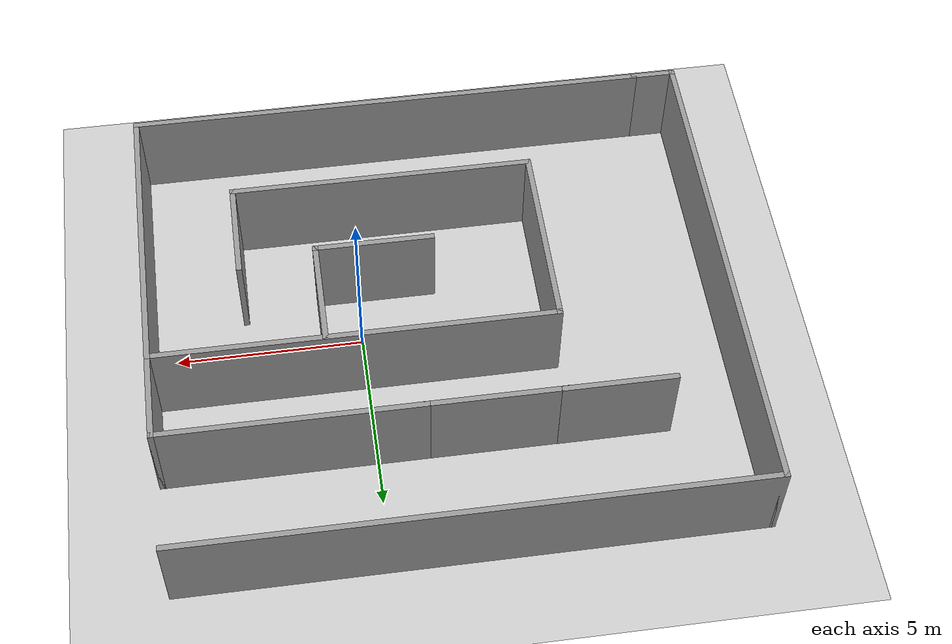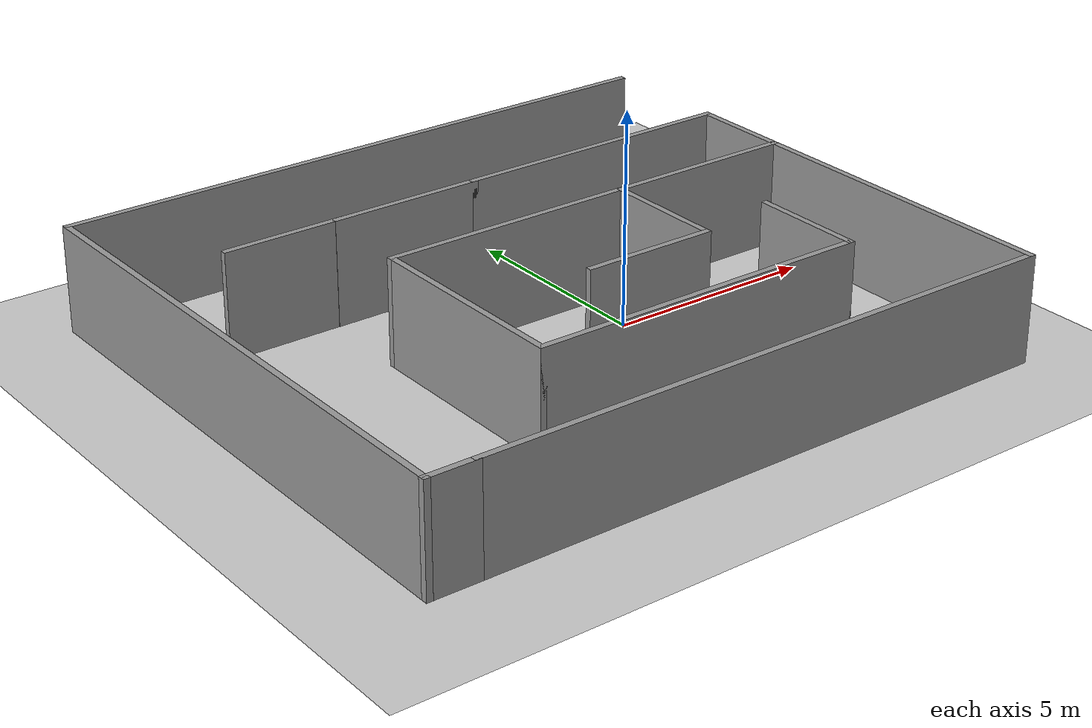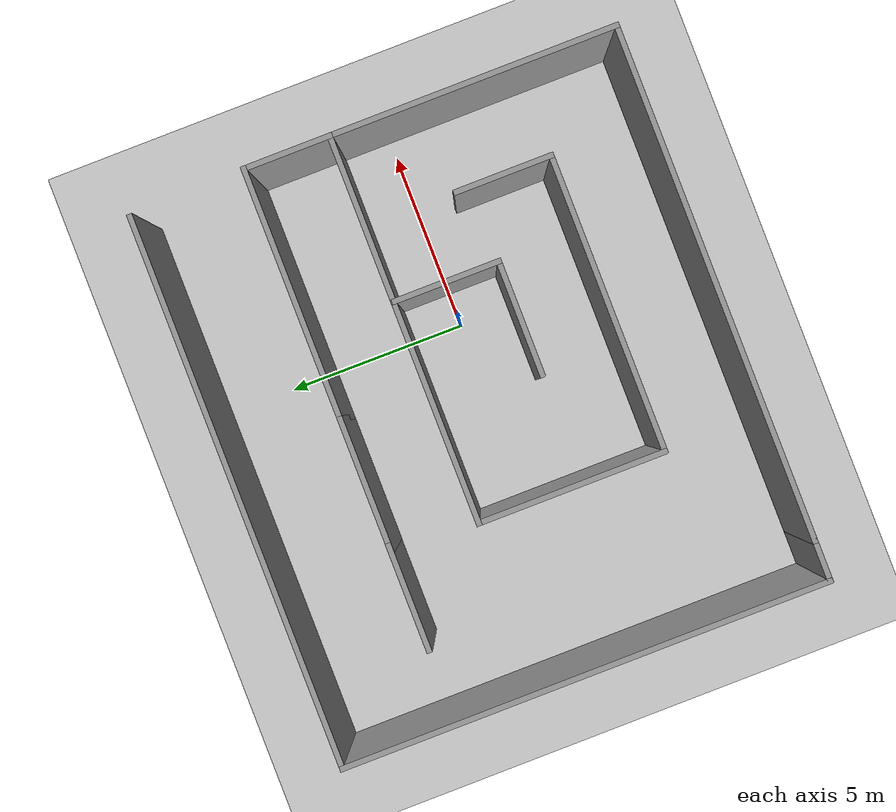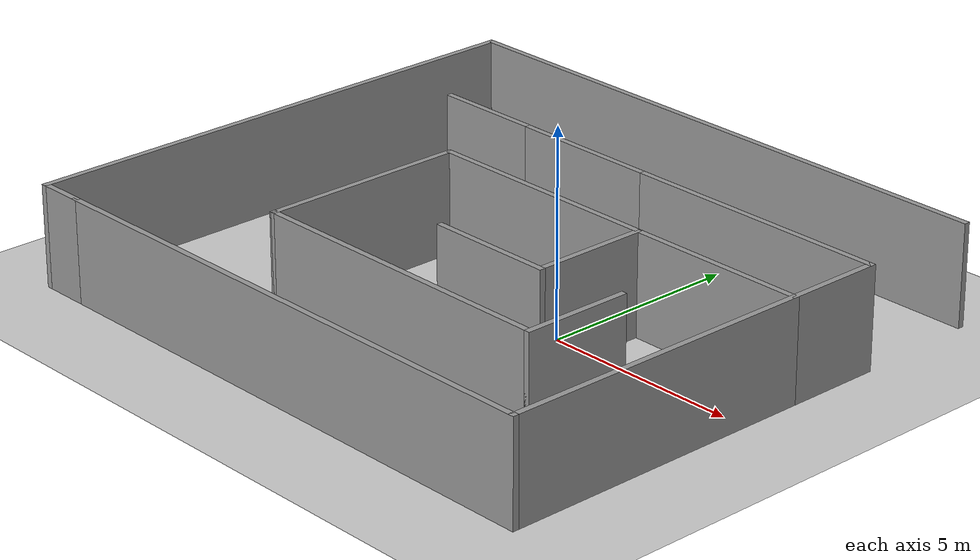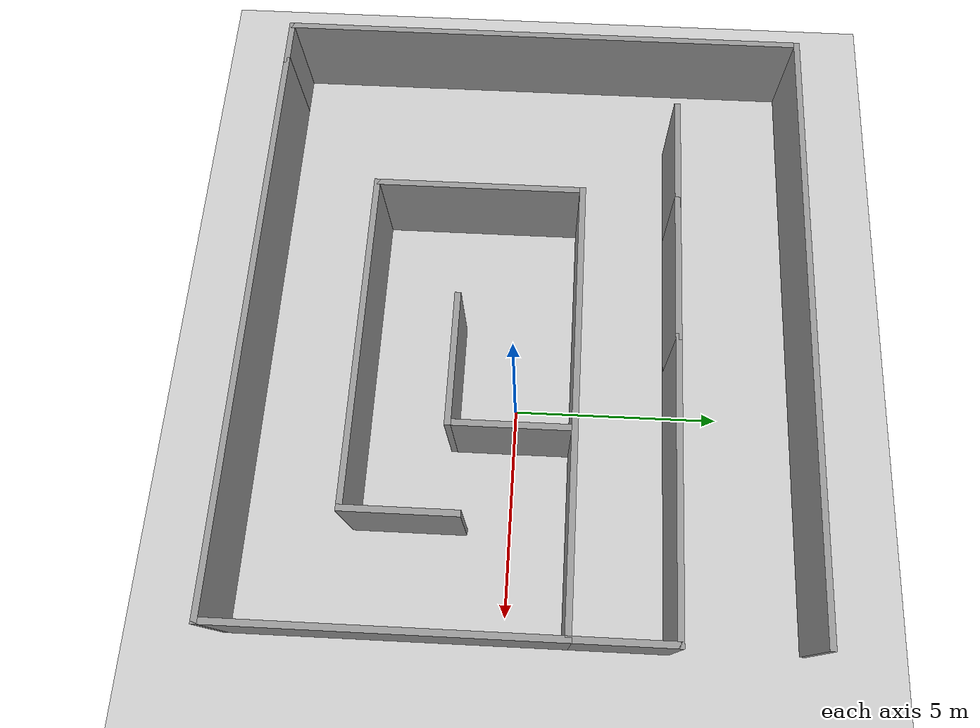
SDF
<sdf version="1.6">
 <world name="default">
  <light name="sun" type="directional">
   <pose>0 0 10 0 -0 0</pose>
   <diffuse>0.8 0.8 0.8 1</diffuse>
   <specular>0.2 0.2 0.2 1</specular>
   <attenuation>
    <range>1000</range>
    <constant>0.9</constant>
    <linear>0.01</linear>
    <quadratic>0.001</quadratic>
   </attenuation>
   <direction>-0.5 0.1 -0.9</direction>
  </light>
  <model name="ground_plane">
   <static>1</static>
   <link name="link">
    <collision name="collision">
     <geometry><plane><normal>0 0 1</normal><size>100 100</size></plane></geometry>
     <surface>
      <contact><collide_bitmask>65535</collide_bitmask></contact>
      <friction><ode><mu>100</mu><mu2>50</mu2></ode></friction>
     </surface>
    </collision>
    <visual name="visual">
     <cast_shadows>0</cast_shadows>
     <geometry><plane><normal>0 0 1</normal><size>100 100</size></plane></geometry>
     <material>
      <script><uri>file://media/materials/scripts/gazebo.material</uri><name>Gazebo/Grey</name></script>
     </material>
    </visual>
   </link>
  </model>
  <gravity>0 0 -9.8</gravity>
  <magnetic_field>6e-06 2.3e-05 -4.2e-05</magnetic_field>
  <atmosphere type="adiabatic"/>
  <physics name="default_physics" default="0" type="ode">
   <max_step_size>0.001</max_step_size>
   <real_time_factor>1</real_time_factor>
   <real_time_update_rate>1000</real_time_update_rate>
  </physics>
  <scene><ambient>0.4 0.4 0.4 1</ambient><background>0.7 0.7 0.7 1</background><shadows>1</shadows></scene>
  <audio><device>default</device></audio>
  <spherical_coordinates>
   <surface_model>EARTH_WGS84</surface_model>
   <latitude_deg>0</latitude_deg>
   <longitude_deg>0</longitude_deg>
   <elevation>0</elevation>
   <heading_deg>0</heading_deg>
  </spherical_coordinates>
  <model name="Untitled">
   <link name="Wall_8">
    <pose>-4.5 5.3 0 0 -0 3.14159</pose>
    <visual name="Wall_8_Visual">
     <pose>0 0 1.25 0 -0 0</pose>
     <geometry><box><size>3 0.15 2.5</size></box></geometry>
     <material>
      <script><uri>file://media/materials/scripts/gazebo.material</uri><name>Gazebo/Grey</name></script>
      <ambient>1 1 1 1</ambient>
     </material>
     <meta><layer>0</layer></meta>
    </visual>
    <collision name="Wall_8_Collision">
     <pose>0 0 1.25 0 -0 0</pose>
     <geometry><box><size>3 0.15 2.5</size></box></geometry>
     <surface>
      <friction>
       <ode><mu>1</mu><mu2>1</mu2><fdir1>0 0 0</fdir1><slip1>0</slip1><slip2>0</slip2></ode>
       <torsional>
        <coefficient>1</coefficient>
        <patch_radius>0</patch_radius>
        <surface_radius>0</surface_radius>
        <use_patch_radius>1</use_patch_radius>
        <ode><slip>0</slip></ode>
       </torsional>
      </friction>
      <bounce><restitution_coefficient>0</restitution_coefficient><threshold>1e+06</threshold></bounce>
      <contact>
       <collide_without_contact>0</collide_without_contact>
       <collide_without_contact_bitmask>1</collide_without_contact_bitmask>
       <collide_bitmask>1</collide_bitmask>
       <ode>
        <soft_cfm>0</soft_cfm>
        <soft_erp>0.2</soft_erp>
        <kp>1e+13</kp>
        <kd>1</kd>
        <max_vel>0.01</max_vel>
        <min_depth>0</min_depth>
       </ode>
       <bullet>
        <split_impulse>1</split_impulse>
        <split_impulse_penetration_threshold>-0.01</split_impulse_penetration_threshold>
        <soft_cfm>0</soft_cfm>
        <soft_erp>0.2</soft_erp>
        <kp>1e+13</kp>
        <kd>1</kd>
       </bullet>
      </contact>
     </surface>
    </collision>
   </link>
   <static>1</static>
   <pose>-1.68126 -1.5312 0 0 -0 0</pose>
  </model>
  <model name="ewwe">
   <pose>-2.04202 0.239138 0 0 -0 0</pose>
   <link name="Wall_0">
    <collision name="Wall_0_Collision">
     <geometry><box><size>3.75 0.15 2.5</size></box></geometry>
     <pose>0 0 1.25 0 -0 0</pose>
    </collision>
    <visual name="Wall_0_Visual">
     <pose>0 0 1.25 0 -0 0</pose>
     <geometry><box><size>3.75 0.15 2.5</size></box></geometry>
     <material>
      <script><uri>file://media/materials/scripts/gazebo.material</uri><name>Gazebo/Grey</name></script>
      <ambient>1 1 1 1</ambient>
     </material>
     <meta><layer>0</layer></meta>
    </visual>
    <pose>-1.05 3.525 0 0 -0 0</pose>
   </link>
   <link name="Wall_10">
    <collision name="Wall_10_Collision">
     <geometry><box><size>1.25 0.15 2.5</size></box></geometry>
     <pose>0 0 1.25 0 -0 0</pose>
    </collision>
    <visual name="Wall_10_Visual">
     <pose>0 0 1.25 0 -0 0</pose>
     <geometry><box><size>1.25 0.15 2.5</size></box></geometry>
     <material>
      <script><uri>file://media/materials/scripts/gazebo.material</uri><name>Gazebo/Grey</name></script>
      <ambient>1 1 1 1</ambient>
     </material>
     <meta><layer>0</layer></meta>
    </visual>
    <pose>-7.05 -6.675 0 0 -0 3.14159</pose>
   </link>
   <link name="Wall_11">
    <collision name="Wall_11_Collision">
     <geometry><box><size>13.5 0.15 2.5</size></box></geometry>
     <pose>0 0 1.25 0 -0 0</pose>
    </collision>
    <visual name="Wall_11_Visual">
     <pose>0 0 1.25 0 -0 0</pose>
     <geometry><box><size>13.5 0.15 2.5</size></box></geometry>
     <material>
      <script><uri>file://media/materials/scripts/gazebo.material</uri><name>Gazebo/Grey</name></script>
      <ambient>1 1 1 1</ambient>
     </material>
     <meta><layer>0</layer></meta>
    </visual>
    <pose>-7.6 -0 0 0 -0 1.5708</pose>
   </link>
   <link name="Wall_12">
    <collision name="Wall_12_Collision">
     <geometry><box><size>15.25 0.15 2.5</size></box></geometry>
     <pose>0 0 1.25 0 -0 0</pose>
    </collision>
    <visual name="Wall_12_Visual">
     <pose>0 0 1.25 0 -0 0</pose>
     <geometry><box><size>15.25 0.15 2.5</size></box></geometry>
     <material>
      <script><uri>file://media/materials/scripts/gazebo.material</uri><name>Gazebo/Grey</name></script>
      <ambient>1 1 1 1</ambient>
     </material>
     <meta><layer>0</layer></meta>
    </visual>
    <pose>-0.05 6.675 0 0 -0 0</pose>
   </link>
   <link name="Wall_14">
    <collision name="Wall_14_Collision">
     <geometry><box><size>3 0.15 2.5</size></box></geometry>
     <pose>0 0 1.25 0 -0 0</pose>
    </collision>
    <visual name="Wall_14_Visual">
     <pose>0 0 1.25 0 -0 0</pose>
     <geometry><box><size>3 0.15 2.5</size></box></geometry>
     <material>
      <script><uri>file://media/materials/scripts/gazebo.material</uri><name>Gazebo/Grey</name></script>
      <ambient>1 1 1 1</ambient>
     </material>
     <meta><layer>0</layer></meta>
    </visual>
    <pose>3.05801 -0.277641 0 0 -0 -1.5708</pose>
   </link>
   <link name="Wall_15">
    <collision name="Wall_15_Collision">
     <geometry><box><size>3.25 0.15 2.5</size></box></geometry>
     <pose>0 0 1.25 0 -0 0</pose>
    </collision>
    <visual name="Wall_15_Visual">
     <pose>0 0 1.25 0 -0 0</pose>
     <geometry><box><size>3.25 0.15 2.5</size></box></geometry>
     <material>
      <script><uri>file://media/materials/scripts/gazebo.material</uri><name>Gazebo/Grey</name></script>
      <ambient>1 1 1 1</ambient>
     </material>
     <meta><layer>0</layer></meta>
    </visual>
    <pose>1.50801 -1.70264 0 0 -0 3.14159</pose>
   </link>
   <link name="Wall_17">
    <collision name="Wall_17_Collision">
     <geometry><box><size>2.75 0.15 2.5</size></box></geometry>
     <pose>0 0 1.25 0 -0 0</pose>
    </collision>
    <visual name="Wall_17_Visual">
     <pose>0 0 1.25 0 -0 0</pose>
     <geometry><box><size>2.75 0.15 2.5</size></box></geometry>
     <material>
      <script><uri>file://media/materials/scripts/gazebo.material</uri><name>Gazebo/Grey</name></script>
      <ambient>1 1 1 1</ambient>
     </material>
     <meta><layer>0</layer></meta>
    </visual>
    <pose>5.1 -2.625 0 0 -0 1.5708</pose>
   </link>
   <link name="Wall_2">
    <collision name="Wall_2_Collision">
     <geometry><box><size>7 0.15 2.5</size></box></geometry>
     <pose>0 0 1.25 0 -0 0</pose>
    </collision>
    <visual name="Wall_2_Visual">
     <pose>0 0 1.25 0 -0 0</pose>
     <geometry><box><size>7 0.15 2.5</size></box></geometry>
     <material>
      <script><uri>file://media/materials/scripts/gazebo.material</uri><name>Gazebo/Grey</name></script>
      <ambient>1 1 1 1</ambient>
     </material>
     <meta><layer>0</layer></meta>
    </visual>
    <pose>4.175 3.525 0 0 -0 0</pose>
   </link>
   <link name="Wall_3">
    <collision name="Wall_3_Collision">
     <geometry><box><size>2.5 0.15 2.5</size></box></geometry>
     <pose>0 0 1.25 0 -0 0</pose>
    </collision>
    <visual name="Wall_3_Visual">
     <pose>0 0 1.25 0 -0 0</pose>
     <geometry><box><size>2.5 0.15 2.5</size></box></geometry>
     <material>
      <script><uri>file://media/materials/scripts/gazebo.material</uri><name>Gazebo/Grey</name></script>
      <ambient>1 1 1 1</ambient>
     </material>
     <meta><layer>0</layer></meta>
    </visual>
    <pose>7.6 2.35 0 0 -0 -1.5708</pose>
   </link>
   <link name="Wall_4">
    <collision name="Wall_4_Collision">
     <geometry><box><size>10.75 0.15 2.5</size></box></geometry>
     <pose>0 0 1.25 0 -0 0</pose>
    </collision>
    <visual name="Wall_4_Visual">
     <pose>0 0 1.25 0 -0 0</pose>
     <geometry><box><size>10.75 0.15 2.5</size></box></geometry>
     <material>
      <script><uri>file://media/materials/scripts/gazebo.material</uri><name>Gazebo/Grey</name></script>
      <ambient>1 1 1 1</ambient>
     </material>
     <meta><layer>0</layer></meta>
    </visual>
    <pose>2.3 1.175 0 0 -0 3.14159</pose>
   </link>
   <link name="Wall_5">
    <collision name="Wall_5_Collision">
     <geometry><box><size>5.25 0.15 2.5</size></box></geometry>
     <pose>0 0 1.25 0 -0 0</pose>
    </collision>
    <visual name="Wall_5_Visual">
     <pose>0 0 1.25 0 -0 0</pose>
     <geometry><box><size>5.25 0.15 2.5</size></box></geometry>
     <material>
      <script><uri>file://media/materials/scripts/gazebo.material</uri><name>Gazebo/Grey</name></script>
      <ambient>1 1 1 1</ambient>
     </material>
     <meta><layer>0</layer></meta>
    </visual>
    <pose>-3 -1.375 0 0 -0 -1.5708</pose>
   </link>
   <link name="Wall_6">
    <collision name="Wall_6_Collision">
     <geometry><box><size>8.25 0.15 2.5</size></box></geometry>
     <pose>0 0 1.25 0 -0 0</pose>
    </collision>
    <visual name="Wall_6_Visual">
     <pose>0 0 1.25 0 -0 0</pose>
     <geometry><box><size>8.25 0.15 2.5</size></box></geometry>
     <material>
      <script><uri>file://media/materials/scripts/gazebo.material</uri><name>Gazebo/Grey</name></script>
      <ambient>1 1 1 1</ambient>
     </material>
     <meta><layer>0</layer></meta>
    </visual>
    <pose>1.05 -3.925 0 0 -0 0</pose>
   </link>
   <link name="Wall_8">
    <collision name="Wall_8_Collision">
     <geometry><box><size>8 0.15 2.5</size></box></geometry>
     <pose>0 0 1.25 0 -0 0</pose>
    </collision>
    <visual name="Wall_8_Visual">
     <pose>0 0 1.25 0 -0 0</pose>
     <geometry><box><size>8 0.15 2.5</size></box></geometry>
     <material>
      <script><uri>file://media/materials/scripts/gazebo.material</uri><name>Gazebo/Grey</name></script>
      <ambient>1 1 1 1</ambient>
     </material>
     <meta><layer>0</layer></meta>
    </visual>
    <pose>7.6 -2.75 0 0 -0 -1.5708</pose>
   </link>
   <link name="Wall_9">
    <collision name="Wall_9_Collision">
     <geometry><box><size>14.25 0.15 2.5</size></box></geometry>
     <pose>0 0 1.25 0 -0 0</pose>
    </collision>
    <visual name="Wall_9_Visual">
     <pose>0 0 1.25 0 -0 0</pose>
     <geometry><box><size>14.25 0.15 2.5</size></box></geometry>
     <material>
      <script><uri>file://media/materials/scripts/gazebo.material</uri><name>Gazebo/Grey</name></script>
      <ambient>1 1 1 1</ambient>
     </material>
     <meta><layer>0</layer></meta>
    </visual>
    <pose>0.55 -6.675 0 0 -0 3.14159</pose>
   </link>
   <static>1</static>
  </model>
 </world>
</sdf>
